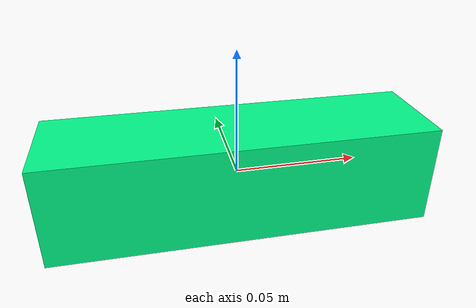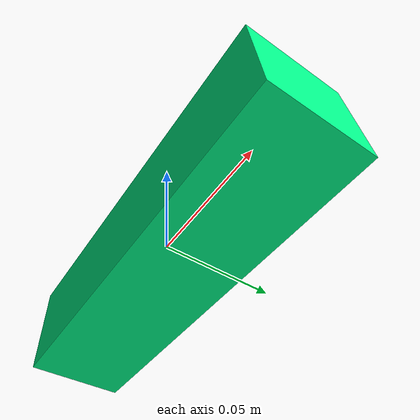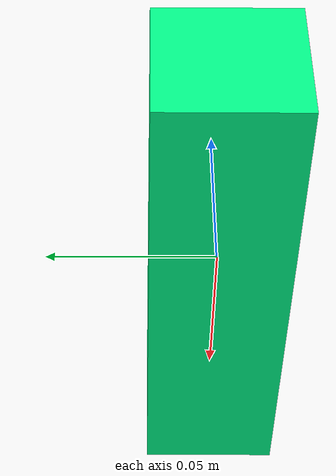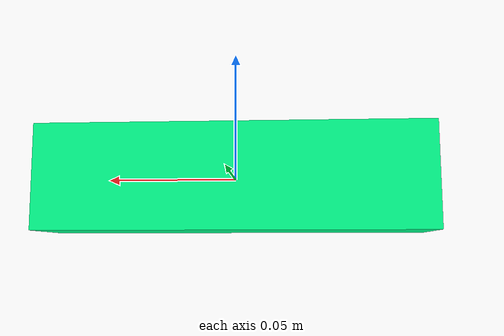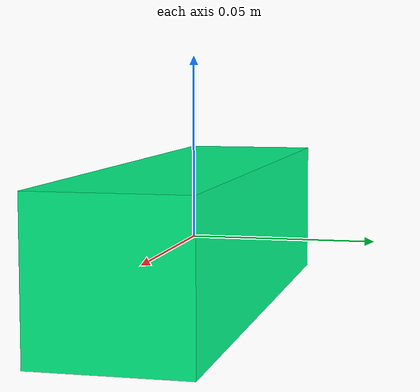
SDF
<?xml version="1.0"?>
<sdf version='1.6'>
<model name="peg2">
  <link name="base_link">
    <inertial>
      <pose frame=''>0 0 0 0 0 0 </pose>
      <mass>0.028</mass>
        <inertia>
          <ixx>1.17e-5</ixx>
          <ixy>0</ixy>
          <ixz>0</ixz>
          <iyy>1.9e-5</iyy>
          <iyz>0</iyz>
          <izz>1.9e-5</izz>
        </inertia>
    </inertial>
    <visual name='base_link'>
      <pose frame=''>0 0 0 0 0 0</pose>
      <geometry>
        <box>
          <size>0.15 0.04 0.04</size>
        </box>
      </geometry>
      <material>
        <diffuse>0.0 1.0 0.550 2.0</diffuse>
      </material>
    </visual>

    <collision name='box_collision'>
      <pose>0 0 0 0 0 0</pose>
      <geometry>
        <box>
          <size>0.145 0.039 0.039</size>
        </box>
      </geometry>
      <material>
        <diffuse>0 1 0 1.0</diffuse>
      </material>
    </collision>

    <collision name='point_collision1'>
      <pose>0.075 0.02 -0.02 0 0 0</pose>
      <geometry>
        <sphere><radius>1e-7</radius></sphere>
      </geometry>
    </collision>

    <collision name='point_collision2'>
      <pose>0.075 -0.02 -0.02 0 0 0</pose>
      <geometry>
        <sphere><radius>1e-7</radius></sphere>
      </geometry>
    </collision>

    <collision name='point_collision3'>
      <pose>-0.075 0.02 -0.02 0 0 0</pose>
      <geometry>
        <sphere><radius>1e-7</radius></sphere>
      </geometry>
    </collision>

    <collision name='point_collision4'>
      <pose>-0.075 -0.02 -0.02 0 0 0</pose>
      <geometry>
        <sphere><radius>1e-7</radius></sphere>
      </geometry>
    </collision>

    <collision name='point_collision5'>
      <pose>0.075 0.02 0.02 0 0 0</pose>
      <geometry>
        <sphere><radius>1e-7</radius></sphere>
      </geometry>
    </collision>

    <collision name='point_collision6'>
      <pose>0.075 -0.02 0.02 0 0 0</pose>
      <geometry>
        <sphere><radius>1e-7</radius></sphere>
      </geometry>
    </collision>

    <collision name='point_collision7'>
      <pose>-0.075 0.02 0.02 0 0 0</pose>
      <geometry>
        <sphere><radius>1e-7</radius></sphere>
      </geometry>
    </collision>

    <collision name='point_collision8'>
      <pose>-0.075 -0.02 0.02 0 0 0</pose>
      <geometry>
        <sphere><radius>1e-7</radius></sphere>
      </geometry>
    </collision>

   </link>
</model>
</sdf>
